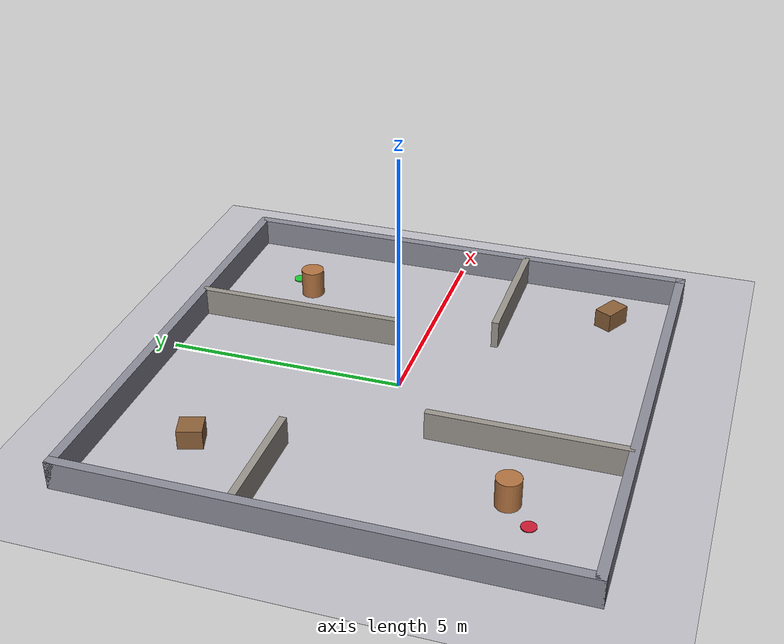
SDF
<?xml version="1.0"?>
<sdf version="1.10">
  <world name="my_custom_world">

    <physics name="1ms" type="ignored">
      <max_step_size>0.001</max_step_size>
      <real_time_factor>1.0</real_time_factor>
    </physics>

    <plugin filename="gz-sim-physics-system"
            name="gz::sim::systems::Physics"/>
    <plugin filename="gz-sim-user-commands-system"
            name="gz::sim::systems::UserCommands"/>
    <plugin filename="gz-sim-scene-broadcaster-system"
            name="gz::sim::systems::SceneBroadcaster"/>
    <plugin filename="gz-sim-sensors-system"
            name="gz::sim::systems::Sensors">
      <render_engine>ogre2</render_engine>
    </plugin>

    <light type="directional" name="sun">
      <cast_shadows>true</cast_shadows>
      <pose>0 0 10 0 0 0</pose>
      <diffuse>0.95 0.95 0.95 1</diffuse>
      <specular>0.25 0.25 0.25 1</specular>
      <attenuation>
        <range>1000</range>
        <constant>0.9</constant>
        <linear>0.01</linear>
        <quadratic>0.001</quadratic>
      </attenuation>
      <direction>-0.5 0.1 -0.9</direction>
    </light>

    <!-- Ground plane -->
    <model name="ground_plane">
      <static>true</static>
      <link name="link">
        <collision name="collision">
          <geometry>
            <plane>
              <normal>0 0 1</normal>
              <size>100 100</size>
            </plane>
          </geometry>
        </collision>
        <visual name="visual">
          <geometry>
            <plane>
              <normal>0 0 1</normal>
              <size>100 100</size>
            </plane>
          </geometry>
          <material>
            <ambient>0.75 0.75 0.78 1</ambient>
            <diffuse>0.75 0.75 0.78 1</diffuse>
          </material>
        </visual>
      </link>
    </model>

    <!--   Walled maze: ~10x10 m enclosure with internal rooms            -->
    <!--   Same world as ros_05_slam_mapping for map consistency          -->

    <!-- Outer wall: NORTH -->
    <model name="wall_n">
      <static>true</static>
      <pose>0 5 0.3 0 0 0</pose>
      <link name="link">
        <collision name="c">
          <geometry><box><size>10.2 0.2 0.6</size></box></geometry>
        </collision>
        <visual name="v">
          <geometry><box><size>10.2 0.2 0.6</size></box></geometry>
          <material>
            <ambient>0.55 0.55 0.60 1</ambient>
            <diffuse>0.55 0.55 0.60 1</diffuse>
          </material>
        </visual>
      </link>
    </model>

    <!-- Outer wall: SOUTH -->
    <model name="wall_s">
      <static>true</static>
      <pose>0 -5 0.3 0 0 0</pose>
      <link name="link">
        <collision name="c">
          <geometry><box><size>10.2 0.2 0.6</size></box></geometry>
        </collision>
        <visual name="v">
          <geometry><box><size>10.2 0.2 0.6</size></box></geometry>
          <material>
            <ambient>0.55 0.55 0.60 1</ambient>
            <diffuse>0.55 0.55 0.60 1</diffuse>
          </material>
        </visual>
      </link>
    </model>

    <!-- Outer wall: EAST -->
    <model name="wall_e">
      <static>true</static>
      <pose>5 0 0.3 0 0 0</pose>
      <link name="link">
        <collision name="c">
          <geometry><box><size>0.2 10.2 0.6</size></box></geometry>
        </collision>
        <visual name="v">
          <geometry><box><size>0.2 10.2 0.6</size></box></geometry>
          <material>
            <ambient>0.55 0.55 0.60 1</ambient>
            <diffuse>0.55 0.55 0.60 1</diffuse>
          </material>
        </visual>
      </link>
    </model>

    <!-- Outer wall: WEST -->
    <model name="wall_w">
      <static>true</static>
      <pose>-5 0 0.3 0 0 0</pose>
      <link name="link">
        <collision name="c">
          <geometry><box><size>0.2 10.2 0.6</size></box></geometry>
        </collision>
        <visual name="v">
          <geometry><box><size>0.2 10.2 0.6</size></box></geometry>
          <material>
            <ambient>0.55 0.55 0.60 1</ambient>
            <diffuse>0.55 0.55 0.60 1</diffuse>
          </material>
        </visual>
      </link>
    </model>

    <!-- Internal walls -->
    <model name="wall_i1">
      <static>true</static>
      <pose>-1.5 -3.0 0.3 0 0 0</pose>
      <link name="link">
        <collision name="c">
          <geometry><box><size>0.15 4.0 0.6</size></box></geometry>
        </collision>
        <visual name="v">
          <geometry><box><size>0.15 4.0 0.6</size></box></geometry>
          <material>
            <ambient>0.60 0.58 0.55 1</ambient>
            <diffuse>0.60 0.58 0.55 1</diffuse>
          </material>
        </visual>
      </link>
    </model>

    <model name="wall_i2">
      <static>true</static>
      <pose>1.5 2.75 0.3 0 0 0</pose>
      <link name="link">
        <collision name="c">
          <geometry><box><size>0.15 4.5 0.6</size></box></geometry>
        </collision>
        <visual name="v">
          <geometry><box><size>0.15 4.5 0.6</size></box></geometry>
          <material>
            <ambient>0.60 0.58 0.55 1</ambient>
            <diffuse>0.60 0.58 0.55 1</diffuse>
          </material>
        </visual>
      </link>
    </model>

    <model name="wall_i3">
      <static>true</static>
      <pose>-3.75 1.5 0.3 0 0 0</pose>
      <link name="link">
        <collision name="c">
          <geometry><box><size>2.5 0.15 0.6</size></box></geometry>
        </collision>
        <visual name="v">
          <geometry><box><size>2.5 0.15 0.6</size></box></geometry>
          <material>
            <ambient>0.60 0.58 0.55 1</ambient>
            <diffuse>0.60 0.58 0.55 1</diffuse>
          </material>
        </visual>
      </link>
    </model>

    <model name="wall_i4">
      <static>true</static>
      <pose>3.5 -1.5 0.3 0 0 0</pose>
      <link name="link">
        <collision name="c">
          <geometry><box><size>3.0 0.15 0.6</size></box></geometry>
        </collision>
        <visual name="v">
          <geometry><box><size>3.0 0.15 0.6</size></box></geometry>
          <material>
            <ambient>0.60 0.58 0.55 1</ambient>
            <diffuse>0.60 0.58 0.55 1</diffuse>
          </material>
        </visual>
      </link>
    </model>

    <!-- Obstacles -->
    <model name="pillar_a">
      <static>true</static>
      <pose>-3.0 -3.0 0.3 0 0 0</pose>
      <link name="link">
        <collision name="c">
          <geometry><cylinder><radius>0.25</radius><length>0.6</length></cylinder></geometry>
        </collision>
        <visual name="v">
          <geometry><cylinder><radius>0.25</radius><length>0.6</length></cylinder></geometry>
          <material>
            <ambient>0.70 0.45 0.25 1</ambient>
            <diffuse>0.70 0.45 0.25 1</diffuse>
          </material>
        </visual>
      </link>
    </model>

    <model name="pillar_b">
      <static>true</static>
      <pose>3.0 3.0 0.3 0 0 0</pose>
      <link name="link">
        <collision name="c">
          <geometry><cylinder><radius>0.25</radius><length>0.6</length></cylinder></geometry>
        </collision>
        <visual name="v">
          <geometry><cylinder><radius>0.25</radius><length>0.6</length></cylinder></geometry>
          <material>
            <ambient>0.70 0.45 0.25 1</ambient>
            <diffuse>0.70 0.45 0.25 1</diffuse>
          </material>
        </visual>
      </link>
    </model>

    <model name="crate_1">
      <static>true</static>
      <pose>-3.0 3.2 0.2 0 0 0.3</pose>
      <link name="link">
        <collision name="c">
          <geometry><box><size>0.5 0.5 0.4</size></box></geometry>
        </collision>
        <visual name="v">
          <geometry><box><size>0.5 0.5 0.4</size></box></geometry>
          <material>
            <ambient>0.55 0.38 0.22 1</ambient>
            <diffuse>0.55 0.38 0.22 1</diffuse>
          </material>
        </visual>
      </link>
    </model>

    <model name="crate_2">
      <static>true</static>
      <pose>3.7 -3.7 0.2 0 0 -0.5</pose>
      <link name="link">
        <collision name="c">
          <geometry><box><size>0.6 0.4 0.4</size></box></geometry>
        </collision>
        <visual name="v">
          <geometry><box><size>0.6 0.4 0.4</size></box></geometry>
          <material>
            <ambient>0.55 0.38 0.22 1</ambient>
            <diffuse>0.55 0.38 0.22 1</diffuse>
          </material>
        </visual>
      </link>
    </model>

    <!-- Nav2 goal markers — colored cylinders to mark waypoints visually -->
    <model name="goal_marker_A">
      <static>true</static>
      <pose>3.5 3.5 0.01 0 0 0</pose>
      <link name="link">
        <visual name="v">
          <geometry><cylinder><radius>0.15</radius><length>0.02</length></cylinder></geometry>
          <material>
            <ambient>0.1 0.8 0.2 1</ambient>
            <diffuse>0.1 0.8 0.2 1</diffuse>
          </material>
        </visual>
      </link>
    </model>

    <model name="goal_marker_B">
      <static>true</static>
      <pose>-3.5 -3.5 0.01 0 0 0</pose>
      <link name="link">
        <visual name="v">
          <geometry><cylinder><radius>0.15</radius><length>0.02</length></cylinder></geometry>
          <material>
            <ambient>0.8 0.1 0.2 1</ambient>
            <diffuse>0.8 0.1 0.2 1</diffuse>
          </material>
        </visual>
      </link>
    </model>

  </world>
</sdf>
